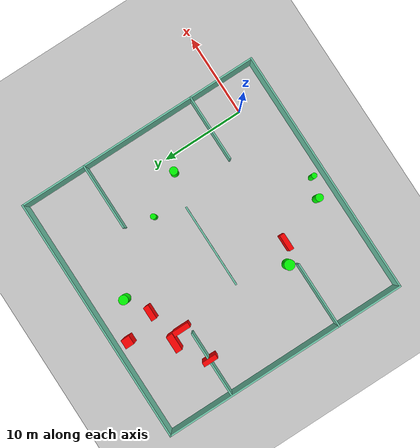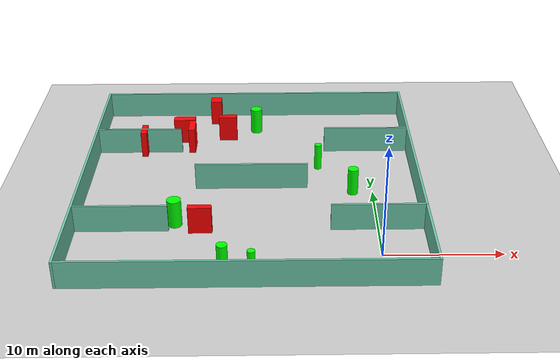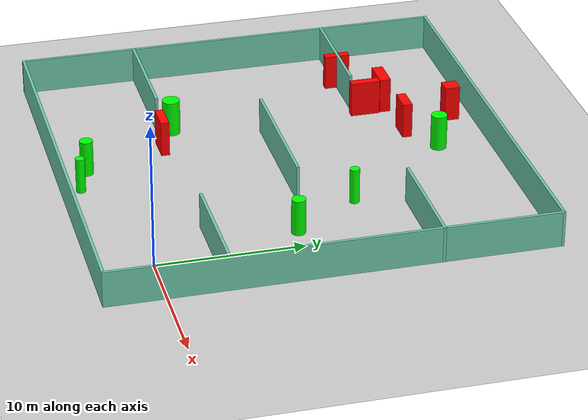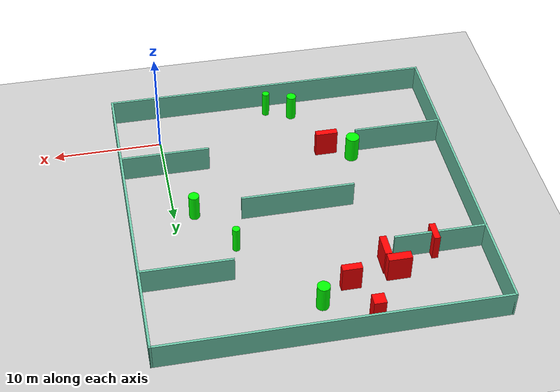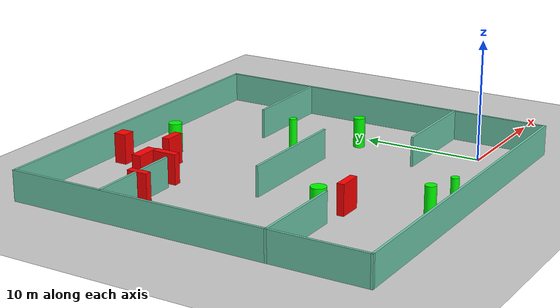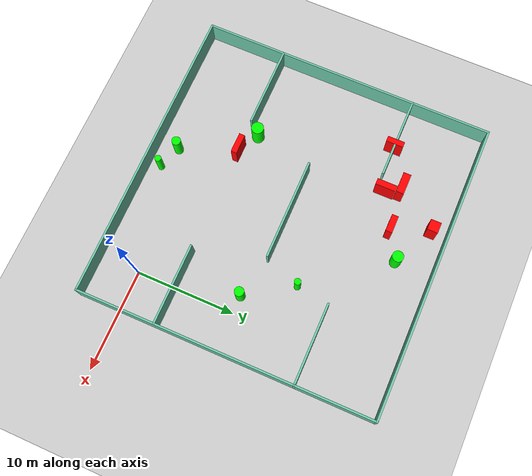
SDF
<sdf version="1.7">
 <world name="default">
  <light name="sun" type="directional">
   <pose>0 0 10 0 -0 0</pose>
   <diffuse>0.8 0.8 0.8 1</diffuse>
   <specular>0.2 0.2 0.2 1</specular>
   <attenuation>
    <range>1000</range>
    <constant>0.9</constant>
    <linear>0.01</linear>
    <quadratic>0.001</quadratic>
   </attenuation>
   <direction>-0.5 0.1 -0.9</direction>
   <spot><inner_angle>0</inner_angle><outer_angle>0</outer_angle><falloff>0</falloff></spot>
  </light>
  <model name="ground_plane">
   <static>1</static>
   <link name="link">
    <collision name="collision">
     <geometry><plane><normal>0 0 1</normal><size>100 100</size></plane></geometry>
     <surface>
      <contact><collide_bitmask>65535</collide_bitmask></contact>
      <friction><ode><mu>100</mu><mu2>50</mu2></ode></friction>
     </surface>
    </collision>
    <visual name="visual">
     <cast_shadows>0</cast_shadows>
     <geometry><plane><normal>0 0 1</normal><size>100 100</size></plane></geometry>
     <material>
      <script><uri>file://media/materials/scripts/gazebo.material</uri><name>Gazebo/Grey</name></script>
     </material>
    </visual>
   </link>
  </model>
  <gravity>0 0 -9.8</gravity>
  <magnetic_field>6e-06 2.3e-05 -4.2e-05</magnetic_field>
  <atmosphere type="adiabatic"/>
  <physics type="ode">
   <max_step_size>0.001</max_step_size>
   <real_time_factor>1</real_time_factor>
   <real_time_update_rate>1000</real_time_update_rate>
  </physics>
  <scene><ambient>0.4 0.4 0.4 1</ambient><background>0.7 0.7 0.7 1</background><shadows>1</shadows></scene>
  <spherical_coordinates>
   <surface_model>EARTH_WGS84</surface_model>
   <latitude_deg>0</latitude_deg>
   <longitude_deg>0</longitude_deg>
   <elevation>0</elevation>
   <heading_deg>0</heading_deg>
  </spherical_coordinates>
  <model name="my_base_walls">
   <link name="Wall_10">
    <collision name="Wall_10_Collision">
     <geometry><box><size>8.2 0.2 2.5</size></box></geometry>
     <pose>0 0 1.25 0 -0 0</pose>
    </collision>
    <visual name="Wall_10_Visual">
     <pose>0 0 1.25 0 -0 0</pose>
     <geometry><box><size>8.2 0.2 2.5</size></box></geometry>
     <material>
      <script><uri>file://media/materials/scripts/gazebo.material</uri><name>Gazebo/Grey</name></script>
      <ambient>0.435294 0.796078 0.67451 1</ambient>
     </material>
     <meta><layer>0</layer></meta>
    </visual>
    <pose>-11 -7 0 0 -0 0</pose>
   </link>
   <link name="Wall_12">
    <collision name="Wall_12_Collision">
     <geometry><box><size>8.2 0.2 2.5</size></box></geometry>
     <pose>0 0 1.25 0 -0 0</pose>
    </collision>
    <visual name="Wall_12_Visual">
     <pose>0 0 1.25 0 -0 0</pose>
     <geometry><box><size>8.2 0.2 2.5</size></box></geometry>
     <material>
      <script><uri>file://media/materials/scripts/gazebo.material</uri><name>Gazebo/Grey</name></script>
      <ambient>0.435294 0.796078 0.67451 1</ambient>
     </material>
     <meta><layer>0</layer></meta>
    </visual>
    <pose>-11 7 0 0 -0 0</pose>
   </link>
   <link name="Wall_14">
    <collision name="Wall_14_Collision">
     <geometry><box><size>8.2 0.2 2.5</size></box></geometry>
     <pose>0 0 1.25 0 -0 0</pose>
    </collision>
    <visual name="Wall_14_Visual">
     <pose>0 0 1.25 0 -0 0</pose>
     <geometry><box><size>8.2 0.2 2.5</size></box></geometry>
     <material>
      <script><uri>file://media/materials/scripts/gazebo.material</uri><name>Gazebo/Grey</name></script>
      <ambient>0.435294 0.796078 0.67451 1</ambient>
     </material>
     <meta><layer>0</layer></meta>
    </visual>
    <pose>11 7 0 0 -0 3.14159</pose>
   </link>
   <link name="Wall_16">
    <collision name="Wall_16_Collision">
     <geometry><box><size>10.2 0.2 2.5</size></box></geometry>
     <pose>0 0 1.25 0 -0 0</pose>
    </collision>
    <visual name="Wall_16_Visual">
     <pose>0 0 1.25 0 -0 0</pose>
     <geometry><box><size>10.2 0.2 2.5</size></box></geometry>
     <material>
      <script><uri>file://media/materials/scripts/gazebo.material</uri><name>Gazebo/Grey</name></script>
      <ambient>0.435294 0.796078 0.67451 1</ambient>
     </material>
     <meta><layer>0</layer></meta>
    </visual>
    <pose>0 0 0 0 -0 3.14159</pose>
   </link>
   <link name="Wall_2">
    <collision name="Wall_2_Collision">
     <geometry><box><size>30.2 0.2 2.5</size></box></geometry>
     <pose>0 0 1.25 0 -0 0</pose>
    </collision>
    <visual name="Wall_2_Visual">
     <pose>0 0 1.25 0 -0 0</pose>
     <geometry><box><size>30.2 0.2 2.5</size></box></geometry>
     <material>
      <script><uri>file://media/materials/scripts/gazebo.material</uri><name>Gazebo/Grey</name></script>
      <ambient>0.435294 0.796078 0.67451 1</ambient>
     </material>
     <meta><layer>0</layer></meta>
    </visual>
    <pose>0 -15 0 0 -0 3.14159</pose>
   </link>
   <link name="Wall_3">
    <collision name="Wall_3_Collision">
     <geometry><box><size>30.2 0.2 2.5</size></box></geometry>
     <pose>0 0 1.25 0 -0 0</pose>
    </collision>
    <visual name="Wall_3_Visual">
     <pose>0 0 1.25 0 -0 0</pose>
     <geometry><box><size>30.2 0.2 2.5</size></box></geometry>
     <material>
      <script><uri>file://media/materials/scripts/gazebo.material</uri><name>Gazebo/Grey</name></script>
      <ambient>0.435294 0.796078 0.67451 1</ambient>
     </material>
     <meta><layer>0</layer></meta>
    </visual>
    <pose>-15 0 0 0 -0 1.5708</pose>
   </link>
   <link name="Wall_4">
    <collision name="Wall_4_Collision">
     <geometry><box><size>30.2 0.2 2.5</size></box></geometry>
     <pose>0 0 1.25 0 -0 0</pose>
    </collision>
    <visual name="Wall_4_Visual">
     <pose>0 0 1.25 0 -0 0</pose>
     <geometry><box><size>30.2 0.2 2.5</size></box></geometry>
     <material>
      <script><uri>file://media/materials/scripts/gazebo.material</uri><name>Gazebo/Grey</name></script>
      <ambient>0.435294 0.796078 0.67451 1</ambient>
     </material>
     <meta><layer>0</layer></meta>
    </visual>
    <pose>0 15 0 0 -0 0</pose>
   </link>
   <link name="Wall_6">
    <collision name="Wall_6_Collision">
     <geometry><box><size>30.2 0.2 2.5</size></box></geometry>
     <pose>0 0 1.25 0 -0 0</pose>
    </collision>
    <visual name="Wall_6_Visual">
     <pose>0 0 1.25 0 -0 0</pose>
     <geometry><box><size>30.2 0.2 2.5</size></box></geometry>
     <material>
      <script><uri>file://media/materials/scripts/gazebo.material</uri><name>Gazebo/Grey</name></script>
      <ambient>0.435294 0.796078 0.67451 1</ambient>
     </material>
     <meta><layer>0</layer></meta>
    </visual>
    <pose>15 0 0 0 -0 1.5708</pose>
   </link>
   <link name="Wall_8">
    <collision name="Wall_8_Collision">
     <geometry><box><size>8.2 0.2 2.5</size></box></geometry>
     <pose>0 0 1.25 0 -0 0</pose>
    </collision>
    <visual name="Wall_8_Visual">
     <pose>0 0 1.25 0 -0 0</pose>
     <geometry><box><size>8.2 0.2 2.5</size></box></geometry>
     <material>
      <script><uri>file://media/materials/scripts/gazebo.material</uri><name>Gazebo/Grey</name></script>
      <ambient>0.435294 0.796078 0.67451 1</ambient>
     </material>
     <meta><layer>0</layer></meta>
    </visual>
    <pose>11 -7 0 0 -0 3.14159</pose>
   </link>
   <static>1</static>
   <pose>-11 11 0 0 -0 0</pose>
  </model>
  <model name="cylinder1">
   <static>1</static>
   <link name="link">
    <inertial>
     <mass>1</mass>
     <inertia><ixx>0.5</ixx><ixy>0</ixy><ixz>0</ixz><iyy>0.5</iyy><iyz>0</iyz><izz>1</izz></inertia>
    </inertial>
    <collision name="collision">
     <geometry><cylinder><radius>0.4767606347761718</radius><length>2.5</length></cylinder></geometry>
    </collision>
    <visual name="visual">
     <geometry><cylinder><radius>0.4767606347761718</radius><length>2.5</length></cylinder></geometry>
     <material>
      <ambient>0 1 0 1</ambient>
      <diffuse>0 1 0 1</diffuse>
      <specular>0.1 0.1 0.1 1</specular>
      <emissive>0 0 0 0</emissive>
     </material>
    </visual>
   </link>
   <pose>-1.8152447861608891 9.973839365623713 1.25 0 0 0</pose>
  </model>
  <model name="cylinder2">
   <static>1</static>
   <link name="link">
    <inertial>
     <mass>1</mass>
     <inertia><ixx>0.5</ixx><ixy>0</ixy><ixz>0</ixz><iyy>0.5</iyy><iyz>0</iyz><izz>1</izz></inertia>
    </inertial>
    <collision name="collision">
     <geometry><cylinder><radius>0.5567050665011543</radius><length>2.5</length></cylinder></geometry>
    </collision>
    <visual name="visual">
     <geometry><cylinder><radius>0.5567050665011543</radius><length>2.5</length></cylinder></geometry>
     <material>
      <ambient>0 1 0 1</ambient>
      <diffuse>0 1 0 1</diffuse>
      <specular>0.1 0.1 0.1 1</specular>
      <emissive>0 0 0 0</emissive>
     </material>
    </visual>
   </link>
   <pose>-10.755075391882187 22.303747395913422 1.25 0 0 0</pose>
  </model>
  <model name="cylinder3">
   <static>1</static>
   <link name="link">
    <inertial>
     <mass>1</mass>
     <inertia><ixx>0.5</ixx><ixy>0</ixy><ixz>0</ixz><iyy>0.5</iyy><iyz>0</iyz><izz>1</izz></inertia>
    </inertial>
    <collision name="collision">
     <geometry><cylinder><radius>0.6174765114075529</radius><length>2.5</length></cylinder></geometry>
    </collision>
    <visual name="visual">
     <geometry><cylinder><radius>0.6174765114075529</radius><length>2.5</length></cylinder></geometry>
     <material>
      <ambient>0 1 0 1</ambient>
      <diffuse>0 1 0 1</diffuse>
      <specular>0.1 0.1 0.1 1</specular>
      <emissive>0 0 0 0</emissive>
     </material>
    </visual>
   </link>
   <pose>-17.437721606477687 4.902061714260125 1.25 0 0 0</pose>
  </model>
  <model name="cylinder4">
   <static>1</static>
   <link name="link">
    <inertial>
     <mass>1</mass>
     <inertia><ixx>0.5</ixx><ixy>0</ixy><ixz>0</ixz><iyy>0.5</iyy><iyz>0</iyz><izz>1</izz></inertia>
    </inertial>
    <collision name="collision">
     <geometry><cylinder><radius>0.32451777607865</radius><length>2.5</length></cylinder></geometry>
    </collision>
    <visual name="visual">
     <geometry><cylinder><radius>0.32451777607865</radius><length>2.5</length></cylinder></geometry>
     <material>
      <ambient>0 1 0 1</ambient>
      <diffuse>0 1 0 1</diffuse>
      <specular>0.1 0.1 0.1 1</specular>
      <emissive>0 0 0 0</emissive>
     </material>
    </visual>
   </link>
   <pose>-10.686395357753021 -2.73659846653423 1.25 0 0 0</pose>
  </model>
  <model name="cylinder5">
   <static>1</static>
   <link name="link">
    <inertial>
     <mass>1</mass>
     <inertia><ixx>0.5</ixx><ixy>0</ixy><ixz>0</ixz><iyy>0.5</iyy><iyz>0</iyz><izz>1</izz></inertia>
    </inertial>
    <collision name="collision">
     <geometry><cylinder><radius>0.45129494341775483</radius><length>2.5</length></cylinder></geometry>
    </collision>
    <visual name="visual">
     <geometry><cylinder><radius>0.45129494341775483</radius><length>2.5</length></cylinder></geometry>
     <material>
      <ambient>0 1 0 1</ambient>
      <diffuse>0 1 0 1</diffuse>
      <specular>0.1 0.1 0.1 1</specular>
      <emissive>0 0 0 0</emissive>
     </material>
    </visual>
   </link>
   <pose>-13.027686939557286 -1.892707567475401 1.25 0 0 0</pose>
  </model>
  <model name="cylinder6">
   <static>1</static>
   <link name="link">
    <inertial>
     <mass>1</mass>
     <inertia><ixx>0.5</ixx><ixy>0</ixy><ixz>0</ixz><iyy>0.5</iyy><iyz>0</iyz><izz>1</izz></inertia>
    </inertial>
    <collision name="collision">
     <geometry><cylinder><radius>0.33236656387398267</radius><length>2.5</length></cylinder></geometry>
    </collision>
    <visual name="visual">
     <geometry><cylinder><radius>0.33236656387398267</radius><length>2.5</length></cylinder></geometry>
     <material>
      <ambient>0 1 0 1</ambient>
      <diffuse>0 1 0 1</diffuse>
      <specular>0.1 0.1 0.1 1</specular>
      <emissive>0 0 0 0</emissive>
     </material>
    </visual>
   </link>
   <pose>-4.810077969576902 14.590735639700167 1.25 0 0 0</pose>
  </model>
  <model name="box1">
   <static>1</static>
   <link name="link">
    <inertial>
     <mass>1</mass>
     <inertia><ixx>0.083</ixx><ixy>0</ixy><ixz>0</ixz><iyy>0.083</iyy><iyz>0</iyz><izz>0.083</izz></inertia>
    </inertial>
    <collision name="collision">
     <geometry><box><size>1.7392907932969173 0.658795881666584 2.5</size></box></geometry>
    </collision>
    <visual name="visual">
     <geometry><box><size>1.7392907932969173 0.658795881666584 2.5</size></box></geometry>
     <material>
      <ambient>1 0 0 1</ambient>
      <diffuse>1 0 0 1</diffuse>
      <specular>0.1 0.1 0.1 1</specular>
      <emissive>0 0 0 0</emissive>
     </material>
    </visual>
    <sensor name="my_contact" type="contact">
     <contact><collision>box_collision</collision><topic>__default_topic__</topic></contact>
    </sensor>
   </link>
   <pose>-13.535832582336504 20.64199308513341 1.25 0 0 0</pose>
  </model>
  <model name="box2">
   <static>1</static>
   <link name="link">
    <inertial>
     <mass>1</mass>
     <inertia><ixx>0.083</ixx><ixy>0</ixy><ixz>0</ixz><iyy>0.083</iyy><iyz>0</iyz><izz>0.083</izz></inertia>
    </inertial>
    <collision name="collision">
     <geometry><box><size>0.5543285069375742 1.749060743671011 2.5</size></box></geometry>
    </collision>
    <visual name="visual">
     <geometry><box><size>0.5543285069375742 1.749060743671011 2.5</size></box></geometry>
     <material>
      <ambient>1 0 0 1</ambient>
      <diffuse>1 0 0 1</diffuse>
      <specular>0.1 0.1 0.1 1</specular>
      <emissive>0 0 0 0</emissive>
     </material>
    </visual>
    <sensor name="my_contact" type="contact">
     <contact><collision>box_collision</collision><topic>__default_topic__</topic></contact>
    </sensor>
   </link>
   <pose>-21.466654997538505 17.93642468091876 1.25 0 0 0</pose>
  </model>
  <model name="box3">
   <static>1</static>
   <link name="link">
    <inertial>
     <mass>1</mass>
     <inertia><ixx>0.083</ixx><ixy>0</ixy><ixz>0</ixz><iyy>0.083</iyy><iyz>0</iyz><izz>0.083</izz></inertia>
    </inertial>
    <collision name="collision">
     <geometry><box><size>2.0895263865845712 0.7841366624261086 2.5</size></box></geometry>
    </collision>
    <visual name="visual">
     <geometry><box><size>2.0895263865845712 0.7841366624261086 2.5</size></box></geometry>
     <material>
      <ambient>1 0 0 1</ambient>
      <diffuse>1 0 0 1</diffuse>
      <specular>0.1 0.1 0.1 1</specular>
      <emissive>0 0 0 0</emissive>
     </material>
    </visual>
    <sensor name="my_contact" type="contact">
     <contact><collision>box_collision</collision><topic>__default_topic__</topic></contact>
    </sensor>
   </link>
   <pose>-17.762601913328815 20.20885599953751 1.25 0 0 0</pose>
  </model>
  <model name="box4">
   <static>1</static>
   <link name="link">
    <inertial>
     <mass>1</mass>
     <inertia><ixx>0.083</ixx><ixy>0</ixy><ixz>0</ixz><iyy>0.083</iyy><iyz>0</iyz><izz>0.083</izz></inertia>
    </inertial>
    <collision name="collision">
     <geometry><box><size>2.0167849389434087 0.5862663297585538 2.5</size></box></geometry>
    </collision>
    <visual name="visual">
     <geometry><box><size>2.0167849389434087 0.5862663297585538 2.5</size></box></geometry>
     <material>
      <ambient>1 0 0 1</ambient>
      <diffuse>1 0 0 1</diffuse>
      <specular>0.1 0.1 0.1 1</specular>
      <emissive>0 0 0 0</emissive>
     </material>
    </visual>
    <sensor name="my_contact" type="contact">
     <contact><collision>box_collision</collision><topic>__default_topic__</topic></contact>
    </sensor>
   </link>
   <pose>-15.188373947140356 3.7931936627790277 1.25 0 0 0</pose>
  </model>
  <model name="box5">
   <static>1</static>
   <link name="link">
    <inertial>
     <mass>1</mass>
     <inertia><ixx>0.083</ixx><ixy>0</ixy><ixz>0</ixz><iyy>0.083</iyy><iyz>0</iyz><izz>0.083</izz></inertia>
    </inertial>
    <collision name="collision">
     <geometry><box><size>0.6069860539841929 2.0421961910408006 2.5</size></box></geometry>
    </collision>
    <visual name="visual">
     <geometry><box><size>0.6069860539841929 2.0421961910408006 2.5</size></box></geometry>
     <material>
      <ambient>1 0 0 1</ambient>
      <diffuse>1 0 0 1</diffuse>
      <specular>0.1 0.1 0.1 1</specular>
      <emissive>0 0 0 0</emissive>
     </material>
    </visual>
    <sensor name="my_contact" type="contact">
     <contact><collision>box_collision</collision><topic>__default_topic__</topic></contact>
    </sensor>
   </link>
   <pose>-16.92636680072414 18.75094428760053 1.25 0 0 0</pose>
  </model>
  <model name="box6">
   <static>1</static>
   <link name="link">
    <inertial>
     <mass>1</mass>
     <inertia><ixx>0.083</ixx><ixy>0</ixy><ixz>0</ixz><iyy>0.083</iyy><iyz>0</iyz><izz>0.083</izz></inertia>
    </inertial>
    <collision name="collision">
     <geometry><box><size>1.0790896032180202 1.0493907600131982 2.5</size></box></geometry>
    </collision>
    <visual name="visual">
     <geometry><box><size>1.0790896032180202 1.0493907600131982 2.5</size></box></geometry>
     <material>
      <ambient>1 0 0 1</ambient>
      <diffuse>1 0 0 1</diffuse>
      <specular>0.1 0.1 0.1 1</specular>
      <emissive>0 0 0 0</emissive>
     </material>
    </visual>
    <sensor name="my_contact" type="contact">
     <contact><collision>box_collision</collision><topic>__default_topic__</topic></contact>
    </sensor>
   </link>
   <pose>-14.877079239522335 24.428733213439596 1.25 0 0 0</pose>
  </model>
 </world>
</sdf>
